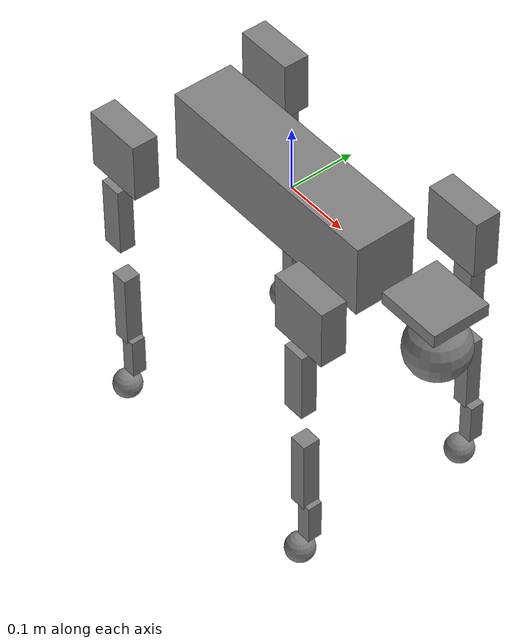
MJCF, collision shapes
<mujoco model="go2w">
  <compiler angle="radian" meshdir="assets" autolimits="true" />

  <option cone="elliptic" impratio="100" />

  <default>
    <default class="go2w">
      <geom friction="0.4" margin="0.001" condim="1" />
      <joint damping="0.1" armature="0.01" frictionloss="0.2" />
      <motor ctrlrange="-23.7 23.7" />
      <default class="visual">
        <geom type="mesh" contype="0" conaffinity="0" group="1" density="0" />
      </default>
      <default class="collision">
        <geom group="3" />
      </default>
    </default>
  </default>

  <asset>
    <material name="metal" rgba=".9 .95 .95 1" />
    <material name="black" rgba="0 0 0 1" />
    <material name="white" rgba="1 1 1 1" />
    <material name="gray" rgba="0.671705 0.692426 0.774270 1" />

    <mesh file="base_0.obj" />
    <mesh file="base_1.obj" />
    <mesh file="base_2.obj" />
    <mesh file="base_3.obj" />
    <mesh file="base_4.obj" />
    <mesh file="hip_0.obj" />
    <mesh file="hip_1.obj" />
    <mesh file="thigh_0.obj" />
    <mesh file="thigh_1.obj" />
    <mesh file="thigh_mirror_0.obj" />
    <mesh file="thigh_mirror_1.obj" />
    <mesh file="calf_mirror_0.obj" />
    <mesh file="calf_mirror_1.obj" />
    <mesh file="calf.stl" />
    <mesh file="calf_mirror.stl" />
    <mesh file="foot.obj" />
    <mesh file="wheel.stl" />
  </asset>

  <worldbody>
    <body name="base" pos="0 0 0">
      <freejoint name="root"/>
      <inertial pos="0.021112 0 -0.005366" quat="0.700719 -0.000543471 -0.00173769 0.713435"
        mass="6.921"
        diaginertia="0.107027 0.0980771 0.0244531" />
      <geom mesh="base_0" material="black" class="visual" />
      <geom mesh="base_1" material="black" class="visual" />
      <geom mesh="base_2" material="black" class="visual" />
      <geom mesh="base_3" material="white" class="visual" />
      <geom mesh="base_4" material="gray" class="visual" />
      <geom size="0.1881 0.04675 0.057" type="box" />
      <geom size="0.05 0.045 0.01" pos="0.285 0 0.01" type="box" />
      <geom size="0.047" pos="0.293 0 -0.06" type="sphere" />

      <body name="FL_hip" pos="0.1934 0.0465 0">
        <inertial pos="-0.0054 0.00194 -0.000105" quat="0.498237 0.497014 0.499245 0.505462"
          mass="0.678"
          diaginertia="0.00088403 0.000596003 0.000479967" />
        <joint name="FL_hip_joint" type="hinge" pos="0 0 0" axis="1 0 0" range="-1.0472 1.0472" limited="true" actuatorfrcrange="-23.7 23.7" stiffness="15" damping="2" armature="0.01" frictionloss="0.2" />
        <geom mesh="hip_0" material="metal" class="visual" />
        <geom mesh="hip_1" material="gray" class="visual" />
        <geom size="0.046 0.02 0.046" pos="0 0.08 0" type="box" />

        <body name="FL_thigh" pos="0 0.0955 0">
          <inertial pos="-0.00374 -0.0223 -0.0327" quat="0.551623 0.829533 0.0847635 -0.0200632"
            mass="1.152"
            diaginertia="0.00594973 0.00584149 0.000878787" />
          <joint name="FL_thigh_joint" type="hinge" pos="0 0 0" axis="0 1 0" range="-1.5708 3.4907" limited="true" actuatorfrcrange="-23.7 23.7" stiffness="15" damping="2" armature="0.01" frictionloss="0.2" />
          <geom mesh="thigh_0" material="metal" class="visual" />
          <geom mesh="thigh_1" material="gray" class="visual" />
          <geom size="0.055 0.01225 0.017" pos="0 0 -0.1065" quat="0.707107 0 0.707107 0" type="box" />

          <body name="FL_calf" pos="0 0 -0.213">
            <inertial pos="0.00629595 -0.000622121 -0.141417"
              quat="0.703508 0.710672 0.00154099 -0.00450087"
              mass="0.241352" diaginertia="0.0014901 0.00146356 5.31397e-05" />
            <joint name="FL_calf_joint" type="hinge" pos="0 0 0" axis="0 1 0" range="-2.7227 -0.83776" limited="true" actuatorfrcrange="-45.43 45.43" stiffness="15" damping="2" armature="0.01" frictionloss="0.2" />
            <geom mesh="calf" material="gray" class="visual" />
            <geom size="0.012 0.012 0.06" pos="0.008 0 -0.06" type="box" />
            <geom size="0.011 0.011 0.0325" pos="0.02 0 -0.148" type="box" />

            <body name="FL_wheel_link" pos="0 0 -0.2264">
              <inertial pos="-0.0 0.04 -0.0"
                quat="0.662108 0.661419 0.248219 0.250051" mass="0.98"
                diaginertia="0.003 0.0016 0.0016" />
              <joint name="FL_wheel_joint" type="hinge" pos="0 0 0" axis="0 1 0" limited="false" actuatorfrcrange="-15 15" stiffness="0" damping="0.5" armature="0.01" frictionloss="0.1" />
              <geom type="mesh" rgba="0.15 0.15 0.15 1" mesh="wheel" pos="0 0.0 0" quat="0.0 0.0 1.0 0.0" class="visual" />
              <geom size="0.022" pos="0 0 0" type="sphere" friction="0.8 0.02 0.01" />
            </body>
          </body>
        </body>
      </body>

      <body name="FR_hip" pos="0.1934 -0.0465 0">
        <inertial pos="-0.0054 -0.00194 -0.000105" quat="0.497014 0.498237 0.505462 0.499245"
          mass="0.678"
          diaginertia="0.00088403 0.000596003 0.000479967" />
        <joint name="FR_hip_joint" type="hinge" pos="0 0 0" axis="1 0 0" range="-1.0472 1.0472" limited="true" actuatorfrcrange="-23.7 23.7" stiffness="15" damping="2" armature="0.01" frictionloss="0.2" />
        <geom mesh="hip_0" material="metal" class="visual" quat="0 4.63268e-05 1 0" />
        <geom mesh="hip_1" material="gray" class="visual" quat="0 4.63268e-05 1 0" />
        <geom size="0.046 0.02 0.046" pos="0 -0.08 0" type="box" />

        <body name="FR_thigh" pos="0 -0.0955 0">
          <inertial pos="-0.00374 0.0223 -0.0327" quat="-0.0200632 0.551623 -0.0200632 0.829533"
            mass="1.152"
            diaginertia="0.00594973 0.00584149 0.000878787" />
          <joint name="FR_thigh_joint" type="hinge" pos="0 0 0" axis="0 1 0" range="-1.5708 3.4907" limited="true" actuatorfrcrange="-23.7 23.7" stiffness="15" damping="2" armature="0.01" frictionloss="0.2" />
          <geom mesh="thigh_mirror_0" material="metal" class="visual" />
          <geom mesh="thigh_mirror_1" material="gray" class="visual" />
          <geom size="0.055 0.01225 0.017" pos="0 0 -0.1065" quat="0.707107 0 0.707107 0" type="box" />

          <body name="FR_calf" pos="0 0 -0.213">
            <inertial pos="0.00629595 0.000622121 -0.141417"
              quat="-0.00450087 0.703508 -0.00450087 0.710672"
              mass="0.241352" diaginertia="0.0014901 0.00146356 5.31397e-05" />
            <joint name="FR_calf_joint" type="hinge" pos="0 0 0" axis="0 1 0" range="-2.7227 -0.83776" limited="true" actuatorfrcrange="-45.43 45.43" stiffness="15" damping="2" armature="0.01" frictionloss="0.2" />
            <geom mesh="calf_mirror" material="gray" class="visual" />
            <geom size="0.013 0.013 0.06" pos="0.01 0 -0.06" type="box" />
            <geom size="0.011 0.011 0.0325" pos="0.02 0 -0.148" type="box" />

            <body name="FR_wheel_link" pos="0 0 -0.2264">
              <inertial pos="-0.0 -0.04 -0.0"
                quat="0.662108 0.661419 0.248219 0.250051" mass="0.98"
                diaginertia="0.003 0.0016 0.0016" />
              <joint name="FR_wheel_joint" type="hinge" pos="0 0 0" axis="0 1 0" limited="false" actuatorfrcrange="-15 15" stiffness="0" damping="0.5" armature="0.01" frictionloss="0.1" />
              <geom type="mesh" rgba="0.15 0.15 0.15 1" mesh="wheel" pos="0 -0.0 0" class="visual" />
              <geom size="0.022" pos="0 0 0" type="sphere" friction="0.8 0.02 0.01" />
            </body>
          </body>
        </body>
      </body>

      <body name="RL_hip" pos="-0.1934 0.0465 0">
        <inertial pos="0.0054 0.00194 -0.000105" quat="0.499245 0.505462 0.498237 0.497014"
          mass="0.678"
          diaginertia="0.00088403 0.000596003 0.000479967" />
        <joint name="RL_hip_joint" type="hinge" pos="0 0 0" axis="1 0 0" range="-1.0472 1.0472" limited="true" actuatorfrcrange="-23.7 23.7" stiffness="15" damping="2" armature="0.01" frictionloss="0.2" />
        <geom mesh="hip_0" material="metal" class="visual" quat="0 4.63268e-05 0 1" />
        <geom mesh="hip_1" material="gray" class="visual" quat="0 4.63268e-05 0 1" />
        <geom size="0.046 0.02 0.046" pos="0 0.08 0" type="box" />

        <body name="RL_thigh" pos="0 0.0955 0">
          <inertial pos="-0.00374 -0.0223 -0.0327" quat="0.551623 0.829533 0.0847635 -0.0200632"
            mass="1.152"
            diaginertia="0.00594973 0.00584149 0.000878787" />
          <joint name="RL_thigh_joint" type="hinge" pos="0 0 0" axis="0 1 0" range="-0.5236 4.5379" limited="true" actuatorfrcrange="-23.7 23.7" stiffness="15" damping="2" armature="0.01" frictionloss="0.2" />
          <geom mesh="thigh_0" material="metal" class="visual" />
          <geom mesh="thigh_1" material="gray" class="visual" />
          <geom size="0.055 0.01225 0.017" pos="0 0 -0.1065" quat="0.707107 0 0.707107 0" type="box" />

          <body name="RL_calf" pos="0 0 -0.213">
            <inertial pos="0.00629595 -0.000622121 -0.141417"
              quat="0.703508 0.710672 0.00154099 -0.00450087"
              mass="0.241352" diaginertia="0.0014901 0.00146356 5.31397e-05" />
            <joint name="RL_calf_joint" type="hinge" pos="0 0 0" axis="0 1 0" range="-2.7227 -0.83776" limited="true" actuatorfrcrange="-45.43 45.43" stiffness="15" damping="2" armature="0.01" frictionloss="0.2" />
            <geom mesh="calf" material="gray" class="visual" />
            <geom size="0.013 0.013 0.06" pos="0.01 0 -0.06" type="box" />
            <geom size="0.011 0.011 0.0325" pos="0.02 0 -0.148" type="box" />

            <body name="RL_wheel_link" pos="0 0 -0.2264">
              <inertial pos="-0.0 0.04 -0.0"
                quat="0.662108 0.661419 0.248219 0.250051" mass="0.98"
                diaginertia="0.003 0.0016 0.0016" />
              <joint name="RL_wheel_joint" type="hinge" pos="0 0 0" axis="0 1 0" limited="false" actuatorfrcrange="-15 15" stiffness="0" damping="0.5" armature="0.01" frictionloss="0.1" />
              <geom type="mesh" rgba="0.15 0.15 0.15 1" mesh="wheel" pos="0 0.0 0" quat="0.0 0.0 1.0 0.0" class="visual" />
              <geom size="0.022" pos="0 0 0" type="sphere" friction="0.8 0.02 0.01" />
            </body>
          </body>
        </body>
      </body>

      <body name="RR_hip" pos="-0.1934 -0.0465 0">
        <inertial pos="0.0054 -0.00194 -0.000105" quat="0.498237 0.499245 0.497014 0.505462"
          mass="0.678"
          diaginertia="0.00088403 0.000596003 0.000479967" />
        <joint name="RR_hip_joint" type="hinge" pos="0 0 0" axis="1 0 0" range="-1.0472 1.0472" limited="true" actuatorfrcrange="-23.7 23.7" stiffness="15" damping="2" armature="0.01" frictionloss="0.2" />
        <geom mesh="hip_0" material="metal" class="visual" quat="4.63268e-05 2.14617e-09 4.63268e-05 -1" />
        <geom mesh="hip_1" material="gray" class="visual" quat="4.63268e-05 2.14617e-09 4.63268e-05 -1" />
        <geom size="0.046 0.02 0.046" pos="0 -0.08 0" type="box" />

        <body name="RR_thigh" pos="0 -0.0955 0">
          <inertial pos="-0.00374 0.0223 -0.0327" quat="-0.0200632 0.551623 -0.0200632 0.829533"
            mass="1.152"
            diaginertia="0.00594973 0.00584149 0.000878787" />
          <joint name="RR_thigh_joint" type="hinge" pos="0 0 0" axis="0 1 0" range="-0.5236 4.5379" limited="true" actuatorfrcrange="-23.7 23.7" stiffness="15" damping="2" armature="0.01" frictionloss="0.2" />
          <geom mesh="thigh_mirror_0" material="metal" class="visual" />
          <geom mesh="thigh_mirror_1" material="gray" class="visual" />
          <geom size="0.055 0.01225 0.017" pos="0 0 -0.1065" quat="0.707107 0 0.707107 0" type="box" />

          <body name="RR_calf" pos="0 0 -0.213">
            <inertial pos="0.00629595 0.000622121 -0.141417"
              quat="-0.00450087 0.703508 -0.00450087 0.710672"
              mass="0.241352" diaginertia="0.0014901 0.00146356 5.31397e-05" />
            <joint name="RR_calf_joint" type="hinge" pos="0 0 0" axis="0 1 0" range="-2.7227 -0.83776" limited="true" actuatorfrcrange="-45.43 45.43" stiffness="15" damping="2" armature="0.01" frictionloss="0.2" />
            <geom mesh="calf_mirror" material="gray" class="visual" />
            <geom size="0.013 0.013 0.06" pos="0.01 0 -0.06" type="box" />
            <geom size="0.011 0.011 0.0325" pos="0.02 0 -0.148" type="box" />

            <body name="RR_wheel_link" pos="0 0 -0.2264">
              <inertial pos="-0.0 -0.04 -0.0"
                quat="0.662108 0.661419 0.248219 0.250051" mass="0.98"
                diaginertia="0.003 0.0016 0.0016" />
              <joint name="RR_wheel_joint" type="hinge" pos="0 0 0" axis="0 1 0" limited="false" actuatorfrcrange="-15 15" stiffness="0" damping="0.5" armature="0.01" frictionloss="0.1" />
              <geom type="mesh" rgba="0.15 0.15 0.15 1" mesh="wheel" pos="0 -0.00 0" class="visual" />
              <geom size="0.022" pos="0 0 0" type="sphere" friction="0.8 0.02 0.01" />
            </body>
          </body>
        </body>
      </body>
    </body>
  </worldbody>

  <actuator>
    <motor name="FR_hip" joint="FR_hip_joint" gear="23.7" ctrlrange="-23.7 23.7" />
    <motor name="FR_thigh" joint="FR_thigh_joint" gear="23.7" ctrlrange="-23.7 23.7" />
    <motor name="FR_calf" joint="FR_calf_joint" gear="35.5" ctrlrange="-45.43 45.43" />

    <motor name="FL_hip" joint="FL_hip_joint" gear="23.7" ctrlrange="-23.7 23.7" />
    <motor name="FL_thigh" joint="FL_thigh_joint" gear="23.7" ctrlrange="-23.7 23.7" />
    <motor name="FL_calf" joint="FL_calf_joint" gear="35.5" ctrlrange="-45.43 45.43" />

    <motor name="RR_hip" joint="RR_hip_joint" gear="23.7" ctrlrange="-23.7 23.7" />
    <motor name="RR_thigh" joint="RR_thigh_joint" gear="23.7" ctrlrange="-23.7 23.7" />
    <motor name="RR_calf" joint="RR_calf_joint" gear="35.5" ctrlrange="-45.43 45.43" />

    <motor name="RL_hip" joint="RL_hip_joint" gear="23.7" ctrlrange="-23.7 23.7" />
    <motor name="RL_thigh" joint="RL_thigh_joint" gear="23.7" ctrlrange="-23.7 23.7" />
    <motor name="RL_calf" joint="RL_calf_joint" gear="35.5" ctrlrange="-45.43 45.43" />

    <motor name="FR_wheel" joint="FR_wheel_joint" gear="15" ctrlrange="-15 15" />
    <motor name="FL_wheel" joint="FL_wheel_joint" gear="15" ctrlrange="-15 15" />
    <motor name="RR_wheel" joint="RR_wheel_joint" gear="15" ctrlrange="-15 15" />
    <motor name="RL_wheel" joint="RL_wheel_joint" gear="15" ctrlrange="-15 15" />
  </actuator>

</mujoco>
